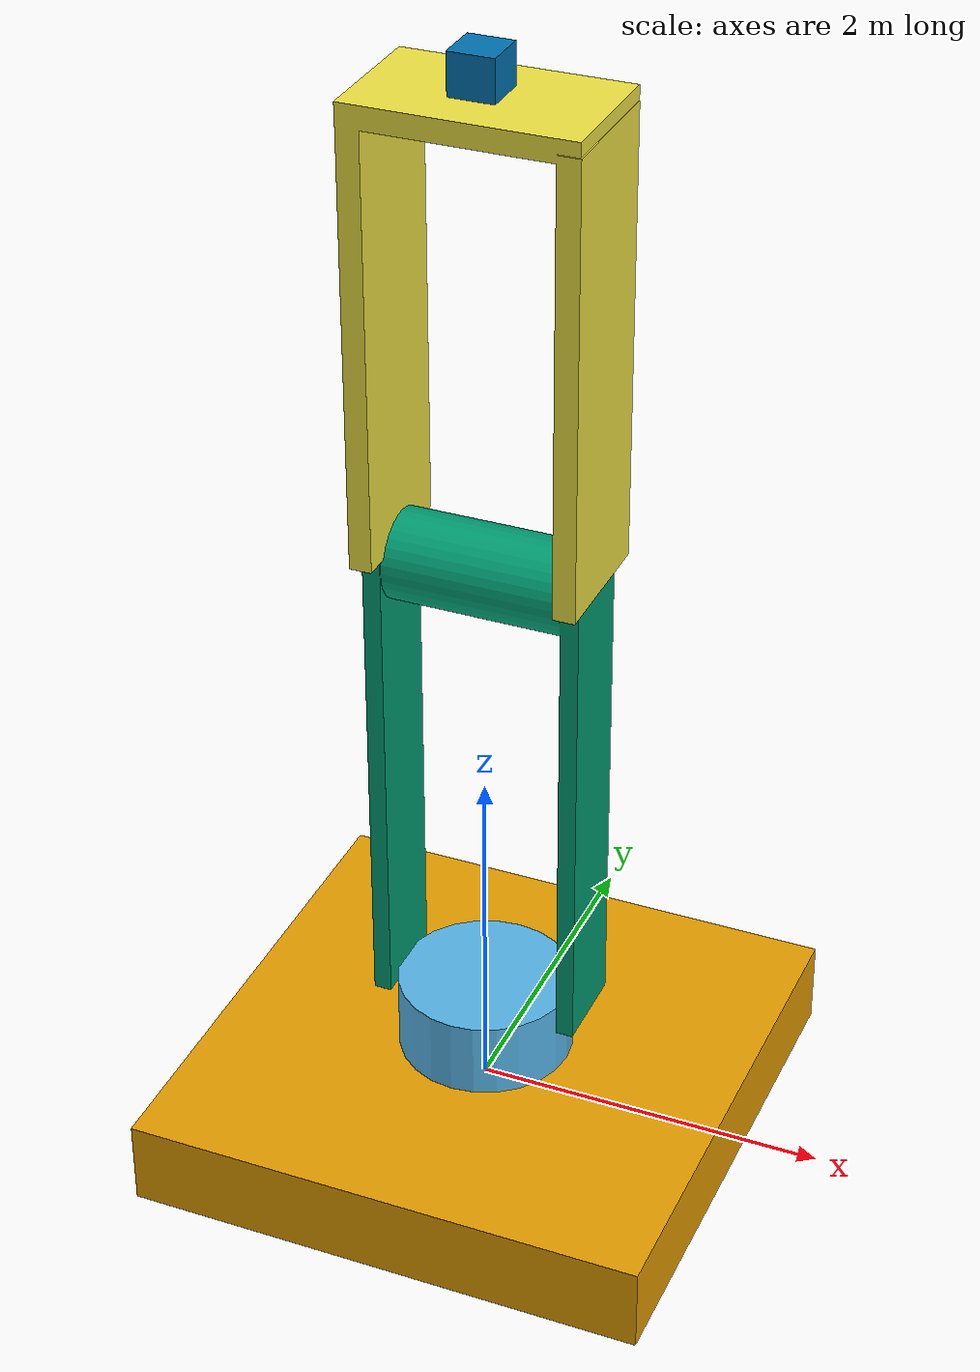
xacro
<robot name="mrm" xmlns:xacro="http://www.ros.org/wiki/xacro">

    <xacro:include filename="$(find arm_descrption)/urdf/macros.xacro" />

    <link name="base_link">
        <inertial>
        <mass value="10000"/>
        <origin rpy="0 0 0" xyz="0 0 0"/>
        <inertia ixx="7708" ixy="0" ixz="0" iyy="7708" iyz="0" izz="15000"/>
        </inertial>
        <!-- body -->
        <collision name="collision_chassis">
        <geometry>
            <box size="3 3 0.5"/>
        </geometry>
        </collision>
        <visual>
            <origin rpy="0 0 0" xyz="0 0 0"/>
            <geometry>
                <box size="3 3 0.5"/>
            </geometry>
        </visual>
    </link>

    <joint name="base_link__link_01" type="revolute">
        <axis xyz="0 0 1" />
        <limit effort="1000.0" lower="-3.14" upper="3.14" velocity="0.5" />
        <origin rpy="0 0 0" xyz="0 0 0.45"/>
        <parent link="base_link"/>
        <child link="base_rotation"/>
    </joint>

    <transmission name="trans_2">
      <type>transmission_interface/SimpleTransmission</type>
      <joint name="base_link__link_01">
        <hardwareInterface>hardware_interface/EffortJointInterface</hardwareInterface>
      </joint>
      <actuator name="motor_base">
        <hardwareInterface>hardware_interface/EffortJointInterface</hardwareInterface>
        <mechanicalReduction>1</mechanicalReduction>
      </actuator>
    </transmission>
    <link name="base_rotation">
         <inertial>
            <origin xyz="0 0 0" rpy="0 0 0" />
            <mass value="1" />
            <xacro:cylinder_inertia mass="1" r="0.5" l="0.5" />
        </inertial>
         <collision>
            <origin xyz="0 0 0" rpy="0 0 0"/>
            <geometry>
                <cylinder radius="0.5" length="0.5"/>
            </geometry>
        </collision>
        <visual>
            <origin rpy="0 0 0" xyz="0 0 0"/>
            <geometry>
                <cylinder radius="0.5" length="0.5"/>
            </geometry>
        </visual>
    </link>
    <transmission name="trans_1">
      <type>transmission_interface/SimpleTransmission</type>
      <joint name="joint_1">
        <hardwareInterface>hardware_interface/EffortJointInterface</hardwareInterface>
      </joint>
      <actuator name="motor_b1">
        <hardwareInterface>hardware_interface/EffortJointInterface</hardwareInterface>
        <mechanicalReduction>1</mechanicalReduction>
      </actuator>
    </transmission>
    <joint
    name="joint_1"
    type="revolute">
    <origin xyz="0 0 0.25" rpy="0 0 0" />
    <limit effort="1000.0" lower="-3.14" upper="3.14" velocity="0.5" />
    <parent link="base_rotation" />
    <child link="first_link" /></joint>
    <xacro:joint_hand name="joint_2" child="second_link" parent="first_link" origin_xyz="0 0 3" />
    <transmission name="trans_2">
      <type>transmission_interface/SimpleTransmission</type>
      <joint name="joint_2">
        <hardwareInterface>hardware_interface/EffortJointInterface</hardwareInterface>
      </joint>
      <actuator name="motor_b2">
        <hardwareInterface>hardware_interface/EffortJointInterface</hardwareInterface>
        <mechanicalReduction>1</mechanicalReduction>
      </actuator>
    </transmission>
    <link name="first_link">
        <inertial>
        <mass value="1"/>
        <origin rpy="0 0 0" xyz="-0.53 0 1"/>
        <inertia ixx="0.0395416666667" ixy="0" ixz="0" iyy="0.106208333333" iyz="0" izz="0.106208333333"/>
        </inertial>
        <!-- body -->
        <collision name="collision_chassis">
        <geometry>
            <box size="1 1 1"/>
        </geometry>
        </collision>
        <visual>
        <origin rpy="0 0 0" xyz="-0.53 0 1"/>
        <geometry>
            <mesh filename="package://arm_descrption/meshes/arm_01.stl"/>
        </geometry>
        </visual>
    </link>
    <link name="second_link">
    <inertial>
        <mass value="1"/>
        <origin rpy="0 0 0" xyz="-0.53 0 1"/>
        <inertia ixx="0.0395416666667" ixy="0" ixz="0" iyy="0.106208333333" iyz="0" izz="0.106208333333"/>
        </inertial>
        <!-- body -->
        <collision name="collision_chassis">
        <geometry>
            <box size="1 1 1"/>
        </geometry>
        </collision>
        <visual>
        <origin rpy="0 0 0" xyz="-0.53 0 1"/>
        <geometry>
            <mesh filename="package://arm_descrption/meshes/arm02.stl" scale="0.5 0.5 0.5"/>
        </geometry>
        </visual>
    </link>
    <link name="third_link">
    <inertial>
        <mass value="1"/>
        <origin rpy="0 0 0" xyz="-0.53 0 1"/>
        <inertia ixx="0.0395416666667" ixy="0" ixz="0" iyy="0.106208333333" iyz="0" izz="0.106208333333"/>
        </inertial>
        <!-- body -->
        <collision name="collision_chassis">
        <geometry>
            <box size="0.25 0.25 0.25"/>
        </geometry>
        </collision>
        <visual>
        <origin rpy="0 0 0" xyz="0 0 0"/>
        <geometry>
            <box size="0.25 0.25 0.25"/>
        </geometry>
        </visual>
    </link>
    <joint name="end" type="fixed">
        <origin rpy="0 0 0" xyz="0 0 2.4"/>
        <parent link="second_link"/>
        <child link="third_link"/>
    </joint>
     <gazebo>
    <plugin name="gazebo_ros_control" filename="libgazebo_ros_control.so">
    </plugin>
  </gazebo>
</robot>

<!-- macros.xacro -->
<robot xmlns:xacro="http://www.ros.org/wiki/xacro">

    <xacro:macro name="joint_hand" params="name parent child origin_xyz">
      <joint name="${name}" type="revolute">
        <origin rpy="0 0 0" xyz="${origin_xyz}"/>
        <limit effort="1000.0" lower="-3.14" upper="3.14" velocity="0.5" />
        <child link="${child}"/>
        <parent link="${parent}"/>
      </joint>
    </xacro:macro>

    <xacro:macro name="cylinder_inertia" params="mass r l">
      <inertia  ixx="${mass*(3*r*r+l*l)/12}" ixy = "0" ixz = "0"
                iyy="${mass*(3*r*r+l*l)/12}" iyz = "0"
                izz="${mass*(r*r)/2}" />
    </xacro:macro>
</robot>
